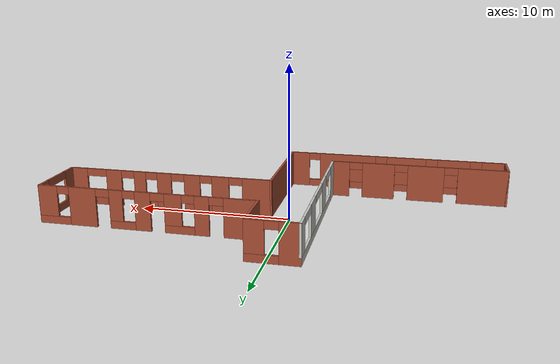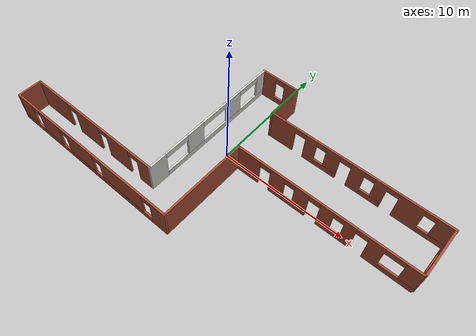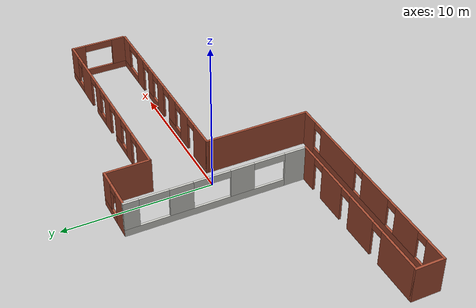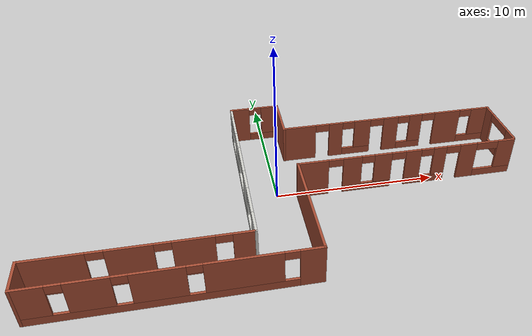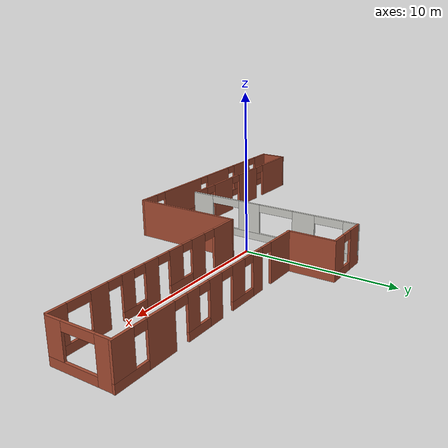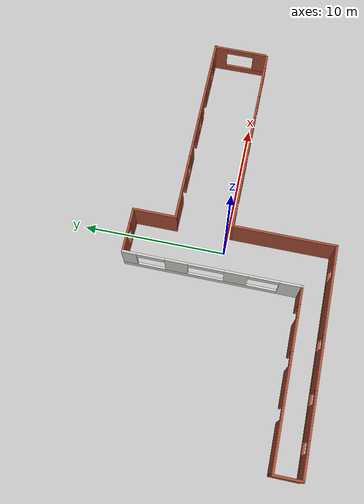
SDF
<?xml version='1.0'?>
<sdf version='1.6'>
  <model name='zoulang1.0'>
    <pose frame=''>0.692493 -0.373973 0 0 -0 0</pose>
    <link name='Wall_13'>
      <collision name='Wall_13_Collision'>
        <geometry>
          <box>
            <size>7.25 0.15 2.5</size>
          </box>
        </geometry>
        <pose frame=''>0 0 1.25 0 -0 0</pose>
      </collision>
      <visual name='Wall_13_Visual'>
        <pose frame=''>0 0 1.25 0 -0 0</pose>
        <geometry>
          <box>
            <size>7.25 0.15 2.5</size>
          </box>
        </geometry>
        <material>
          <script>
            <uri>file://media/materials/scripts/gazebo.material</uri>
            <name>Gazebo/Bricks</name>
          </script>
          <ambient>1 1 1 1</ambient>
        </material>
      </visual>
      <pose frame=''>0.563435 -3.425 0 0 0 -1.5708</pose>
    </link>
    <link name='Wall_14'>
      <pose frame=''>-6.98657 -6.975 0 0 -0 3.14159</pose>
      <visual name='Wall_14_Visual_0'>
        <pose frame=''>-6.94822 0 1.25 0 -0 0</pose>
        <geometry>
          <box>
            <size>1.35357 0.15 2.5</size>
          </box>
        </geometry>
        <material>
          <script>
            <uri>file://media/materials/scripts/gazebo.material</uri>
            <name>Gazebo/Bricks</name>
          </script>
          <ambient>0.996078 0.47451 0.0196078 1</ambient>
        </material>
      </visual>
      <collision name='Wall_14_Collision_0'>
        <geometry>
          <box>
            <size>1.35357 0.15 2.5</size>
          </box>
        </geometry>
        <pose frame=''>-6.94822 0 1.25 0 -0 0</pose>
      </collision>
      <visual name='Wall_14_Visual_1'>
        <pose frame=''>0.676784 0 0.25 0 -0 0</pose>
        <geometry>
          <box>
            <size>13.8964 0.15 0.5</size>
          </box>
        </geometry>
        <material>
          <script>
            <uri>file://media/materials/scripts/gazebo.material</uri>
            <name>Gazebo/Bricks</name>
          </script>
          <ambient>0.996078 0.47451 0.0196078 1</ambient>
        </material>
      </visual>
      <collision name='Wall_14_Collision_1'>
        <geometry>
          <box>
            <size>13.8964 0.15 0.5</size>
          </box>
        </geometry>
        <pose frame=''>0.676784 0 0.25 0 -0 0</pose>
      </collision>
      <visual name='Wall_14_Visual_2'>
        <pose frame=''>-3.4441 0 1.5 0 -0 0</pose>
        <geometry>
          <box>
            <size>4.05467 0.15 2</size>
          </box>
        </geometry>
        <material>
          <script>
            <uri>file://media/materials/scripts/gazebo.material</uri>
            <name>Gazebo/Bricks</name>
          </script>
          <ambient>0.996078 0.47451 0.0196078 1</ambient>
        </material>
      </visual>
      <collision name='Wall_14_Collision_2'>
        <geometry>
          <box>
            <size>4.05467 0.15 2</size>
          </box>
        </geometry>
        <pose frame=''>-3.4441 0 1.5 0 -0 0</pose>
      </collision>
      <visual name='Wall_14_Visual_3'>
        <pose frame=''>0.763283 0 1.5 0 -0 0</pose>
        <geometry>
          <box>
            <size>2.76009 0.15 2</size>
          </box>
        </geometry>
        <material>
          <script>
            <uri>file://media/materials/scripts/gazebo.material</uri>
            <name>Gazebo/Bricks</name>
          </script>
          <ambient>0.996078 0.47451 0.0196078 1</ambient>
        </material>
      </visual>
      <collision name='Wall_14_Collision_3'>
        <geometry>
          <box>
            <size>2.76009 0.15 2</size>
          </box>
        </geometry>
        <pose frame=''>0.763283 0 1.5 0 -0 0</pose>
      </collision>
      <visual name='Wall_14_Visual_4'>
        <pose frame=''>4.06041 0 1.5 0 -0 0</pose>
        <geometry>
          <box>
            <size>2.23417 0.15 2</size>
          </box>
        </geometry>
        <material>
          <script>
            <uri>file://media/materials/scripts/gazebo.material</uri>
            <name>Gazebo/Bricks</name>
          </script>
          <ambient>0.996078 0.47451 0.0196078 1</ambient>
        </material>
      </visual>
      <collision name='Wall_14_Collision_4'>
        <geometry>
          <box>
            <size>2.23417 0.15 2</size>
          </box>
        </geometry>
        <pose frame=''>4.06041 0 1.5 0 -0 0</pose>
      </collision>
      <visual name='Wall_14_Visual_5'>
        <pose frame=''>6.80125 0 1.5 0 -0 0</pose>
        <geometry>
          <box>
            <size>1.6475 0.15 2</size>
          </box>
        </geometry>
        <material>
          <script>
            <uri>file://media/materials/scripts/gazebo.material</uri>
            <name>Gazebo/Bricks</name>
          </script>
          <ambient>0.996078 0.47451 0.0196078 1</ambient>
        </material>
      </visual>
      <collision name='Wall_14_Collision_5'>
        <geometry>
          <box>
            <size>1.6475 0.15 2</size>
          </box>
        </geometry>
        <pose frame=''>6.80125 0 1.5 0 -0 0</pose>
      </collision>
      <visual name='Wall_14_Visual_6'>
        <pose frame=''>-5.87143 0 2.25 0 -0 0</pose>
        <geometry>
          <box>
            <size>0.8 0.15 0.5</size>
          </box>
        </geometry>
        <material>
          <script>
            <uri>file://media/materials/scripts/gazebo.material</uri>
            <name>Gazebo/Bricks</name>
          </script>
          <ambient>0.996078 0.47451 0.0196078 1</ambient>
        </material>
      </visual>
      <collision name='Wall_14_Collision_6'>
        <geometry>
          <box>
            <size>0.8 0.15 0.5</size>
          </box>
        </geometry>
        <pose frame=''>-5.87143 0 2.25 0 -0 0</pose>
      </collision>
      <visual name='Wall_14_Visual_7'>
        <pose frame=''>-1.01676 0 2.25 0 -0 0</pose>
        <geometry>
          <box>
            <size>0.8 0.15 0.5</size>
          </box>
        </geometry>
        <material>
          <script>
            <uri>file://media/materials/scripts/gazebo.material</uri>
            <name>Gazebo/Bricks</name>
          </script>
          <ambient>0.996078 0.47451 0.0196078 1</ambient>
        </material>
      </visual>
      <collision name='Wall_14_Collision_7'>
        <geometry>
          <box>
            <size>0.8 0.15 0.5</size>
          </box>
        </geometry>
        <pose frame=''>-1.01676 0 2.25 0 -0 0</pose>
      </collision>
      <visual name='Wall_14_Visual_8'>
        <pose frame=''>2.54333 0 2.25 0 -0 0</pose>
        <geometry>
          <box>
            <size>0.8 0.15 0.5</size>
          </box>
        </geometry>
        <material>
          <script>
            <uri>file://media/materials/scripts/gazebo.material</uri>
            <name>Gazebo/Bricks</name>
          </script>
          <ambient>0.996078 0.47451 0.0196078 1</ambient>
        </material>
      </visual>
      <collision name='Wall_14_Collision_8'>
        <geometry>
          <box>
            <size>0.8 0.15 0.5</size>
          </box>
        </geometry>
        <pose frame=''>2.54333 0 2.25 0 -0 0</pose>
      </collision>
      <visual name='Wall_14_Visual_9'>
        <pose frame=''>5.5775 0 2.25 0 -0 0</pose>
        <geometry>
          <box>
            <size>0.8 0.15 0.5</size>
          </box>
        </geometry>
        <material>
          <script>
            <uri>file://media/materials/scripts/gazebo.material</uri>
            <name>Gazebo/Bricks</name>
          </script>
          <ambient>0.996078 0.47451 0.0196078 1</ambient>
        </material>
      </visual>
      <collision name='Wall_14_Collision_9'>
        <geometry>
          <box>
            <size>0.8 0.15 0.5</size>
          </box>
        </geometry>
        <pose frame=''>5.5775 0 2.25 0 -0 0</pose>
      </collision>
    </link>
    <link name='Wall_15'>
      <collision name='Wall_15_Collision'>
        <geometry>
          <box>
            <size>2 0.15 2.5</size>
          </box>
        </geometry>
        <pose frame=''>0 0 1.25 0 -0 0</pose>
      </collision>
      <visual name='Wall_15_Visual'>
        <pose frame=''>0 0 1.25 0 -0 0</pose>
        <geometry>
          <box>
            <size>2 0.15 2.5</size>
          </box>
        </geometry>
        <material>
          <script>
            <uri>file://media/materials/scripts/gazebo.material</uri>
            <name>Gazebo/Bricks</name>
          </script>
          <ambient>1 1 1 1</ambient>
        </material>
      </visual>
      <pose frame=''>-14.5366 -6.05 0 0 -0 1.5708</pose>
    </link>
    <link name='Wall_16'>
      <pose frame=''>-8.61157 -5.125 0 0 -0 0</pose>
      <visual name='Wall_16_Visual_0'>
        <pose frame=''>-4.33145 0 1.25 0 -0 0</pose>
        <geometry>
          <box>
            <size>3.33709 0.15 2.5</size>
          </box>
        </geometry>
        <material>
          <script>
            <uri>file://media/materials/scripts/gazebo.material</uri>
            <name>Gazebo/Bricks</name>
          </script>
          <ambient>1 1 1 1</ambient>
        </material>
      </visual>
      <collision name='Wall_16_Collision_0'>
        <geometry>
          <box>
            <size>3.33709 0.15 2.5</size>
          </box>
        </geometry>
        <pose frame=''>-4.33145 0 1.25 0 -0 0</pose>
      </collision>
      <visual name='Wall_16_Visual_1'>
        <pose frame=''>-0.534 0 1.25 0 -0 0</pose>
        <geometry>
          <box>
            <size>2.45781 0.15 2.5</size>
          </box>
        </geometry>
        <material>
          <script>
            <uri>file://media/materials/scripts/gazebo.material</uri>
            <name>Gazebo/Bricks</name>
          </script>
          <ambient>1 1 1 1</ambient>
        </material>
      </visual>
      <collision name='Wall_16_Collision_1'>
        <geometry>
          <box>
            <size>2.45781 0.15 2.5</size>
          </box>
        </geometry>
        <pose frame=''>-0.534 0 1.25 0 -0 0</pose>
      </collision>
      <visual name='Wall_16_Visual_2'>
        <pose frame=''>2.70245 0 1.25 0 -0 0</pose>
        <geometry>
          <box>
            <size>2.21508 0.15 2.5</size>
          </box>
        </geometry>
        <material>
          <script>
            <uri>file://media/materials/scripts/gazebo.material</uri>
            <name>Gazebo/Bricks</name>
          </script>
          <ambient>1 1 1 1</ambient>
        </material>
      </visual>
      <collision name='Wall_16_Collision_2'>
        <geometry>
          <box>
            <size>2.21508 0.15 2.5</size>
          </box>
        </geometry>
        <pose frame=''>2.70245 0 1.25 0 -0 0</pose>
      </collision>
      <visual name='Wall_16_Visual_3'>
        <pose frame=''>5.35499 0 1.25 0 -0 0</pose>
        <geometry>
          <box>
            <size>1.29001 0.15 2.5</size>
          </box>
        </geometry>
        <material>
          <script>
            <uri>file://media/materials/scripts/gazebo.material</uri>
            <name>Gazebo/Bricks</name>
          </script>
          <ambient>1 1 1 1</ambient>
        </material>
      </visual>
      <collision name='Wall_16_Collision_3'>
        <geometry>
          <box>
            <size>1.29001 0.15 2.5</size>
          </box>
        </geometry>
        <pose frame=''>5.35499 0 1.25 0 -0 0</pose>
      </collision>
      <visual name='Wall_16_Visual_4'>
        <pose frame=''>-2.21291 0 2.25 0 -0 0</pose>
        <geometry>
          <box>
            <size>0.9 0.15 0.5</size>
          </box>
        </geometry>
        <material>
          <script>
            <uri>file://media/materials/scripts/gazebo.material</uri>
            <name>Gazebo/Bricks</name>
          </script>
          <ambient>1 1 1 1</ambient>
        </material>
      </visual>
      <collision name='Wall_16_Collision_4'>
        <geometry>
          <box>
            <size>0.9 0.15 0.5</size>
          </box>
        </geometry>
        <pose frame=''>-2.21291 0 2.25 0 -0 0</pose>
      </collision>
      <visual name='Wall_16_Visual_5'>
        <pose frame=''>1.14491 0 2.25 0 -0 0</pose>
        <geometry>
          <box>
            <size>0.9 0.15 0.5</size>
          </box>
        </geometry>
        <material>
          <script>
            <uri>file://media/materials/scripts/gazebo.material</uri>
            <name>Gazebo/Bricks</name>
          </script>
          <ambient>1 1 1 1</ambient>
        </material>
      </visual>
      <collision name='Wall_16_Collision_5'>
        <geometry>
          <box>
            <size>0.9 0.15 0.5</size>
          </box>
        </geometry>
        <pose frame=''>1.14491 0 2.25 0 -0 0</pose>
      </collision>
      <visual name='Wall_16_Visual_6'>
        <pose frame=''>4.25999 0 2.25 0 -0 0</pose>
        <geometry>
          <box>
            <size>0.9 0.15 0.5</size>
          </box>
        </geometry>
        <material>
          <script>
            <uri>file://media/materials/scripts/gazebo.material</uri>
            <name>Gazebo/Bricks</name>
          </script>
          <ambient>1 1 1 1</ambient>
        </material>
      </visual>
      <collision name='Wall_16_Collision_6'>
        <geometry>
          <box>
            <size>0.9 0.15 0.5</size>
          </box>
        </geometry>
        <pose frame=''>4.25999 0 2.25 0 -0 0</pose>
      </collision>
    </link>
    <link name='Wall_17'>
      <pose frame=''>-2.68656 0.925 0 0 -0 1.5708</pose>
      <visual name='Wall_17_Visual_0'>
        <pose frame=''>-5.33907 0 1.25 0 -0 0</pose>
        <geometry>
          <box>
            <size>1.57187 0.15 2.5</size>
          </box>
        </geometry>
        <material>
          <script>
            <uri>file://media/materials/scripts/gazebo.material</uri>
            <name>Gazebo/CeilingTiled</name>
          </script>
          <ambient>1 1 1 1</ambient>
        </material>
      </visual>
      <collision name='Wall_17_Collision_0'>
        <geometry>
          <box>
            <size>1.57187 0.15 2.5</size>
          </box>
        </geometry>
        <pose frame=''>-5.33907 0 1.25 0 -0 0</pose>
      </collision>
      <visual name='Wall_17_Visual_1'>
        <pose frame=''>0.785934 0 0.25 0 -0 0</pose>
        <geometry>
          <box>
            <size>10.6781 0.15 0.5</size>
          </box>
        </geometry>
        <material>
          <script>
            <uri>file://media/materials/scripts/gazebo.material</uri>
            <name>Gazebo/CeilingTiled</name>
          </script>
          <ambient>1 1 1 1</ambient>
        </material>
      </visual>
      <collision name='Wall_17_Collision_1'>
        <geometry>
          <box>
            <size>10.6781 0.15 0.5</size>
          </box>
        </geometry>
        <pose frame=''>0.785934 0 0.25 0 -0 0</pose>
      </collision>
      <visual name='Wall_17_Visual_2'>
        <pose frame=''>-1.65476 0 1.5 0 -0 0</pose>
        <geometry>
          <box>
            <size>1.60674 0.15 2</size>
          </box>
        </geometry>
        <material>
          <script>
            <uri>file://media/materials/scripts/gazebo.material</uri>
            <name>Gazebo/CeilingTiled</name>
          </script>
          <ambient>1 1 1 1</ambient>
        </material>
      </visual>
      <collision name='Wall_17_Collision_2'>
        <geometry>
          <box>
            <size>1.60674 0.15 2</size>
          </box>
        </geometry>
        <pose frame=''>-1.65476 0 1.5 0 -0 0</pose>
      </collision>
      <visual name='Wall_17_Visual_3'>
        <pose frame=''>2.39079 0 1.5 0 -0 0</pose>
        <geometry>
          <box>
            <size>1.56637 0.15 2</size>
          </box>
        </geometry>
        <material>
          <script>
            <uri>file://media/materials/scripts/gazebo.material</uri>
            <name>Gazebo/CeilingTiled</name>
          </script>
          <ambient>1 1 1 1</ambient>
        </material>
      </visual>
      <collision name='Wall_17_Collision_3'>
        <geometry>
          <box>
            <size>1.56637 0.15 2</size>
          </box>
        </geometry>
        <pose frame=''>2.39079 0 1.5 0 -0 0</pose>
      </collision>
      <visual name='Wall_17_Visual_4'>
        <pose frame=''>5.61599 0 1.5 0 -0 0</pose>
        <geometry>
          <box>
            <size>1.01803 0.15 2</size>
          </box>
        </geometry>
        <material>
          <script>
            <uri>file://media/materials/scripts/gazebo.material</uri>
            <name>Gazebo/CeilingTiled</name>
          </script>
          <ambient>1 1 1 1</ambient>
        </material>
      </visual>
      <collision name='Wall_17_Collision_4'>
        <geometry>
          <box>
            <size>1.01803 0.15 2</size>
          </box>
        </geometry>
        <pose frame=''>5.61599 0 1.5 0 -0 0</pose>
      </collision>
      <visual name='Wall_17_Visual_5'>
        <pose frame=''>-3.50563 0 2.25 0 -0 0</pose>
        <geometry>
          <box>
            <size>2.095 0.15 0.5</size>
          </box>
        </geometry>
        <material>
          <script>
            <uri>file://media/materials/scripts/gazebo.material</uri>
            <name>Gazebo/CeilingTiled</name>
          </script>
          <ambient>1 1 1 1</ambient>
        </material>
      </visual>
      <collision name='Wall_17_Collision_5'>
        <geometry>
          <box>
            <size>2.095 0.15 0.5</size>
          </box>
        </geometry>
        <pose frame=''>-3.50563 0 2.25 0 -0 0</pose>
      </collision>
      <visual name='Wall_17_Visual_6'>
        <pose frame=''>0.378104 0 2.25 0 -0 0</pose>
        <geometry>
          <box>
            <size>2.459 0.15 0.5</size>
          </box>
        </geometry>
        <material>
          <script>
            <uri>file://media/materials/scripts/gazebo.material</uri>
            <name>Gazebo/CeilingTiled</name>
          </script>
          <ambient>1 1 1 1</ambient>
        </material>
      </visual>
      <collision name='Wall_17_Collision_6'>
        <geometry>
          <box>
            <size>2.459 0.15 0.5</size>
          </box>
        </geometry>
        <pose frame=''>0.378104 0 2.25 0 -0 0</pose>
      </collision>
      <visual name='Wall_17_Visual_7'>
        <pose frame=''>4.14047 0 2.25 0 -0 0</pose>
        <geometry>
          <box>
            <size>1.933 0.15 0.5</size>
          </box>
        </geometry>
        <material>
          <script>
            <uri>file://media/materials/scripts/gazebo.material</uri>
            <name>Gazebo/CeilingTiled</name>
          </script>
          <ambient>1 1 1 1</ambient>
        </material>
      </visual>
      <collision name='Wall_17_Collision_7'>
        <geometry>
          <box>
            <size>1.933 0.15 0.5</size>
          </box>
        </geometry>
        <pose frame=''>4.14047 0 2.25 0 -0 0</pose>
      </collision>
    </link>
    <link name='Wall_18'>
      <pose frame=''>-1.13657 6.975 0 0 -0 0</pose>
      <visual name='Wall_18_Visual_0'>
        <pose frame=''>-0.990487 0 1.25 0 -0 0</pose>
        <geometry>
          <box>
            <size>1.26903 0.15 2.5</size>
          </box>
        </geometry>
        <material>
          <script>
            <uri>file://media/materials/scripts/gazebo.material</uri>
            <name>Gazebo/Bricks</name>
          </script>
          <ambient>1 1 1 1</ambient>
        </material>
      </visual>
      <collision name='Wall_18_Collision_0'>
        <geometry>
          <box>
            <size>1.26903 0.15 2.5</size>
          </box>
        </geometry>
        <pose frame=''>-0.990487 0 1.25 0 -0 0</pose>
      </collision>
      <visual name='Wall_18_Visual_1'>
        <pose frame=''>0.634513 0 0.25 0 -0 0</pose>
        <geometry>
          <box>
            <size>1.98097 0.15 0.5</size>
          </box>
        </geometry>
        <material>
          <script>
            <uri>file://media/materials/scripts/gazebo.material</uri>
            <name>Gazebo/Bricks</name>
          </script>
          <ambient>1 1 1 1</ambient>
        </material>
      </visual>
      <collision name='Wall_18_Collision_1'>
        <geometry>
          <box>
            <size>1.98097 0.15 0.5</size>
          </box>
        </geometry>
        <pose frame=''>0.634513 0 0.25 0 -0 0</pose>
      </collision>
      <visual name='Wall_18_Visual_2'>
        <pose frame=''>1.03451 0 1.5 0 -0 0</pose>
        <geometry>
          <box>
            <size>1.18097 0.15 2</size>
          </box>
        </geometry>
        <material>
          <script>
            <uri>file://media/materials/scripts/gazebo.material</uri>
            <name>Gazebo/Bricks</name>
          </script>
          <ambient>1 1 1 1</ambient>
        </material>
      </visual>
      <collision name='Wall_18_Collision_2'>
        <geometry>
          <box>
            <size>1.18097 0.15 2</size>
          </box>
        </geometry>
        <pose frame=''>1.03451 0 1.5 0 -0 0</pose>
      </collision>
      <visual name='Wall_18_Visual_3'>
        <pose frame=''>0.044026 0 2.25 0 -0 0</pose>
        <geometry>
          <box>
            <size>0.8 0.15 0.5</size>
          </box>
        </geometry>
        <material>
          <script>
            <uri>file://media/materials/scripts/gazebo.material</uri>
            <name>Gazebo/Bricks</name>
          </script>
          <ambient>1 1 1 1</ambient>
        </material>
      </visual>
      <collision name='Wall_18_Collision_3'>
        <geometry>
          <box>
            <size>0.8 0.15 0.5</size>
          </box>
        </geometry>
        <pose frame=''>0.044026 0 2.25 0 -0 0</pose>
      </collision>
    </link>
    <link name='Wall_19'>
      <collision name='Wall_19_Collision'>
        <geometry>
          <box>
            <size>3.11565 0.15 2.5</size>
          </box>
        </geometry>
        <pose frame=''>0 0 1.25 0 -0 0</pose>
      </collision>
      <visual name='Wall_19_Visual'>
        <pose frame=''>0 0 1.25 0 -0 0</pose>
        <geometry>
          <box>
            <size>3.11565 0.15 2.5</size>
          </box>
        </geometry>
        <material>
          <script>
            <uri>file://media/materials/scripts/gazebo.material</uri>
            <name>Gazebo/Bricks</name>
          </script>
          <ambient>1 1 1 1</ambient>
        </material>
      </visual>
      <pose frame=''>0.413435 5.49217 0 0 0 -1.5708</pose>
    </link>
    <link name='Wall_20'>
      <pose frame=''>7.48657 4.03248 0 0 -0 0</pose>
      <visual name='Wall_20_Visual_0'>
        <pose frame=''>-6.04901 0 1.25 0 -0 0</pose>
        <geometry>
          <box>
            <size>2.15197 0.15 2.5</size>
          </box>
        </geometry>
        <material>
          <script>
            <uri>file://media/materials/scripts/gazebo.material</uri>
            <name>Gazebo/Bricks</name>
          </script>
          <ambient>1 1 1 1</ambient>
        </material>
      </visual>
      <collision name='Wall_20_Collision_0'>
        <geometry>
          <box>
            <size>2.15197 0.15 2.5</size>
          </box>
        </geometry>
        <pose frame=''>-6.04901 0 1.25 0 -0 0</pose>
      </collision>
      <visual name='Wall_20_Visual_1'>
        <pose frame=''>-3.61407 0 1.25 0 -0 0</pose>
        <geometry>
          <box>
            <size>0.917909 0.15 2.5</size>
          </box>
        </geometry>
        <material>
          <script>
            <uri>file://media/materials/scripts/gazebo.material</uri>
            <name>Gazebo/Bricks</name>
          </script>
          <ambient>1 1 1 1</ambient>
        </material>
      </visual>
      <collision name='Wall_20_Collision_1'>
        <geometry>
          <box>
            <size>0.917909 0.15 2.5</size>
          </box>
        </geometry>
        <pose frame=''>-3.61407 0 1.25 0 -0 0</pose>
      </collision>
      <visual name='Wall_20_Visual_2'>
        <pose frame=''>0.154363 0 1.25 0 -0 0</pose>
        <geometry>
          <box>
            <size>1.01096 0.15 2.5</size>
          </box>
        </geometry>
        <material>
          <script>
            <uri>file://media/materials/scripts/gazebo.material</uri>
            <name>Gazebo/Bricks</name>
          </script>
          <ambient>1 1 1 1</ambient>
        </material>
      </visual>
      <collision name='Wall_20_Collision_2'>
        <geometry>
          <box>
            <size>1.01096 0.15 2.5</size>
          </box>
        </geometry>
        <pose frame=''>0.154363 0 1.25 0 -0 0</pose>
      </collision>
      <visual name='Wall_20_Visual_3'>
        <pose frame=''>4.13216 0 1.25 0 -0 0</pose>
        <geometry>
          <box>
            <size>1.80186 0.15 2.5</size>
          </box>
        </geometry>
        <material>
          <script>
            <uri>file://media/materials/scripts/gazebo.material</uri>
            <name>Gazebo/Bricks</name>
          </script>
          <ambient>1 1 1 1</ambient>
        </material>
      </visual>
      <collision name='Wall_20_Collision_3'>
        <geometry>
          <box>
            <size>1.80186 0.15 2.5</size>
          </box>
        </geometry>
        <pose frame=''>4.13216 0 1.25 0 -0 0</pose>
      </collision>
      <visual name='Wall_20_Visual_4'>
        <pose frame=''>-2.20312 0 0.25 0 -0 0</pose>
        <geometry>
          <box>
            <size>1.904 0.15 0.5</size>
          </box>
        </geometry>
        <material>
          <script>
            <uri>file://media/materials/scripts/gazebo.material</uri>
            <name>Gazebo/Bricks</name>
          </script>
          <ambient>1 1 1 1</ambient>
        </material>
      </visual>
      <collision name='Wall_20_Collision_4'>
        <geometry>
          <box>
            <size>1.904 0.15 0.5</size>
          </box>
        </geometry>
        <pose frame=''>-2.20312 0 0.25 0 -0 0</pose>
      </collision>
      <visual name='Wall_20_Visual_5'>
        <pose frame=''>1.49553 0 0.25 0 -0 0</pose>
        <geometry>
          <box>
            <size>1.67138 0.15 0.5</size>
          </box>
        </geometry>
        <material>
          <script>
            <uri>file://media/materials/scripts/gazebo.material</uri>
            <name>Gazebo/Bricks</name>
          </script>
          <ambient>1 1 1 1</ambient>
        </material>
      </visual>
      <collision name='Wall_20_Collision_5'>
        <geometry>
          <box>
            <size>1.67138 0.15 0.5</size>
          </box>
        </geometry>
        <pose frame=''>1.49553 0 0.25 0 -0 0</pose>
      </collision>
      <visual name='Wall_20_Visual_6'>
        <pose frame=''>6.07904 0 0.25 0 -0 0</pose>
        <geometry>
          <box>
            <size>2.09191 0.15 0.5</size>
          </box>
        </geometry>
        <material>
          <script>
            <uri>file://media/materials/scripts/gazebo.material</uri>
            <name>Gazebo/Bricks</name>
          </script>
          <ambient>1 1 1 1</ambient>
        </material>
      </visual>
      <collision name='Wall_20_Collision_6'>
        <geometry>
          <box>
            <size>2.09191 0.15 0.5</size>
          </box>
        </geometry>
        <pose frame=''>6.07904 0 0.25 0 -0 0</pose>
      </collision>
      <visual name='Wall_20_Visual_7'>
        <pose frame=''>-1.80312 0 1.5 0 -0 0</pose>
        <geometry>
          <box>
            <size>1.104 0.15 2</size>
          </box>
        </geometry>
        <material>
          <script>
            <uri>file://media/materials/scripts/gazebo.material</uri>
            <name>Gazebo/Bricks</name>
          </script>
          <ambient>1 1 1 1</ambient>
        </material>
      </visual>
      <collision name='Wall_20_Collision_7'>
        <geometry>
          <box>
            <size>1.104 0.15 2</size>
          </box>
        </geometry>
        <pose frame=''>-1.80312 0 1.5 0 -0 0</pose>
      </collision>
      <visual name='Wall_20_Visual_8'>
        <pose frame=''>-1.80312 0 1.5 0 -0 0</pose>
        <geometry>
          <box>
            <size>1.104 0.15 2</size>
          </box>
        </geometry>
        <material>
          <script>
            <uri>file://media/materials/scripts/gazebo.material</uri>
            <name>Gazebo/Bricks</name>
          </script>
          <ambient>1 1 1 1</ambient>
        </material>
      </visual>
      <collision name='Wall_20_Collision_8'>
        <geometry>
          <box>
            <size>1.104 0.15 2</size>
          </box>
        </geometry>
        <pose frame=''>-1.80312 0 1.5 0 -0 0</pose>
      </collision>
      <visual name='Wall_20_Visual_9'>
        <pose frame=''>1.89553 0 1.5 0 -0 0</pose>
        <geometry>
          <box>
            <size>0.871385 0.15 2</size>
          </box>
        </geometry>
        <material>
          <script>
            <uri>file://media/materials/scripts/gazebo.material</uri>
            <name>Gazebo/Bricks</name>
          </script>
          <ambient>1 1 1 1</ambient>
        </material>
      </visual>
      <collision name='Wall_20_Collision_9'>
        <geometry>
          <box>
            <size>0.871385 0.15 2</size>
          </box>
        </geometry>
        <pose frame=''>1.89553 0 1.5 0 -0 0</pose>
      </collision>
      <visual name='Wall_20_Visual_10'>
        <pose frame=''>1.89553 0 1.5 0 -0 0</pose>
        <geometry>
          <box>
            <size>0.871385 0.15 2</size>
          </box>
        </geometry>
        <material>
          <script>
            <uri>file://media/materials/scripts/gazebo.material</uri>
            <name>Gazebo/Bricks</name>
          </script>
          <ambient>1 1 1 1</ambient>
        </material>
      </visual>
      <collision name='Wall_20_Collision_10'>
        <geometry>
          <box>
            <size>0.871385 0.15 2</size>
          </box>
        </geometry>
        <pose frame=''>1.89553 0 1.5 0 -0 0</pose>
      </collision>
      <visual name='Wall_20_Visual_11'>
        <pose frame=''>6.47905 0 1.5 0 -0 0</pose>
        <geometry>
          <box>
            <size>1.29191 0.15 2</size>
          </box>
        </geometry>
        <material>
          <script>
            <uri>file://media/materials/scripts/gazebo.material</uri>
            <name>Gazebo/Bricks</name>
          </script>
          <ambient>1 1 1 1</ambient>
        </material>
      </visual>
      <collision name='Wall_20_Collision_11'>
        <geometry>
          <box>
            <size>1.29191 0.15 2</size>
          </box>
        </geometry>
        <pose frame=''>6.47905 0 1.5 0 -0 0</pose>
      </collision>
      <visual name='Wall_20_Visual_12'>
        <pose frame=''>-4.52303 0 2.25 0 -0 0</pose>
        <geometry>
          <box>
            <size>0.9 0.15 0.5</size>
          </box>
        </geometry>
        <material>
          <script>
            <uri>file://media/materials/scripts/gazebo.material</uri>
            <name>Gazebo/Bricks</name>
          </script>
          <ambient>1 1 1 1</ambient>
        </material>
      </visual>
      <collision name='Wall_20_Collision_12'>
        <geometry>
          <box>
            <size>0.9 0.15 0.5</size>
          </box>
        </geometry>
        <pose frame=''>-4.52303 0 2.25 0 -0 0</pose>
      </collision>
      <visual name='Wall_20_Visual_13'>
        <pose frame=''>-2.75512 0 2.25 0 -0 0</pose>
        <geometry>
          <box>
            <size>0.8 0.15 0.5</size>
          </box>
        </geometry>
        <material>
          <script>
            <uri>file://media/materials/scripts/gazebo.material</uri>
            <name>Gazebo/Bricks</name>
          </script>
          <ambient>1 1 1 1</ambient>
        </material>
      </visual>
      <collision name='Wall_20_Collision_13'>
        <geometry>
          <box>
            <size>0.8 0.15 0.5</size>
          </box>
        </geometry>
        <pose frame=''>-2.75512 0 2.25 0 -0 0</pose>
      </collision>
      <visual name='Wall_20_Visual_14'>
        <pose frame=''>1.05984 0 2.25 0 -0 0</pose>
        <geometry>
          <box>
            <size>0.8 0.15 0.5</size>
          </box>
        </geometry>
        <material>
          <script>
            <uri>file://media/materials/scripts/gazebo.material</uri>
            <name>Gazebo/Bricks</name>
          </script>
          <ambient>1 1 1 1</ambient>
        </material>
      </visual>
      <collision name='Wall_20_Collision_14'>
        <geometry>
          <box>
            <size>0.8 0.15 0.5</size>
          </box>
        </geometry>
        <pose frame=''>1.05984 0 2.25 0 -0 0</pose>
      </collision>
      <visual name='Wall_20_Visual_15'>
        <pose frame=''>5.43309 0 2.25 0 -0 0</pose>
        <geometry>
          <box>
            <size>0.8 0.15 0.5</size>
          </box>
        </geometry>
        <material>
          <script>
            <uri>file://media/materials/scripts/gazebo.material</uri>
            <name>Gazebo/Bricks</name>
          </script>
          <ambient>1 1 1 1</ambient>
        </material>
      </visual>
      <collision name='Wall_20_Collision_15'>
        <geometry>
          <box>
            <size>0.8 0.15 0.5</size>
          </box>
        </geometry>
        <pose frame=''>5.43309 0 2.25 0 -0 0</pose>
      </collision>
      <visual name='Wall_20_Visual_16'>
        <pose frame=''>-0.801116 0 2.25 0 -0 0</pose>
        <geometry>
          <box>
            <size>0.9 0.15 0.5</size>
          </box>
        </geometry>
        <material>
          <script>
            <uri>file://media/materials/scripts/gazebo.material</uri>
            <name>Gazebo/Bricks</name>
          </script>
          <ambient>1 1 1 1</ambient>
        </material>
      </visual>
      <collision name='Wall_20_Collision_16'>
        <geometry>
          <box>
            <size>0.9 0.15 0.5</size>
          </box>
        </geometry>
        <pose frame=''>-0.801116 0 2.25 0 -0 0</pose>
      </collision>
      <visual name='Wall_20_Visual_17'>
        <pose frame=''>-0.801116 0 2.25 0 -0 0</pose>
        <geometry>
          <box>
            <size>0.9 0.15 0.5</size>
          </box>
        </geometry>
        <material>
          <script>
            <uri>file://media/materials/scripts/gazebo.material</uri>
            <name>Gazebo/Bricks</name>
          </script>
          <ambient>1 1 1 1</ambient>
        </material>
      </visual>
      <collision name='Wall_20_Collision_17'>
        <geometry>
          <box>
            <size>0.9 0.15 0.5</size>
          </box>
        </geometry>
        <pose frame=''>-0.801116 0 2.25 0 -0 0</pose>
      </collision>
      <visual name='Wall_20_Visual_18'>
        <pose frame=''>2.78123 0 2.25 0 -0 0</pose>
        <geometry>
          <box>
            <size>0.9 0.15 0.5</size>
          </box>
        </geometry>
        <material>
          <script>
            <uri>file://media/materials/scripts/gazebo.material</uri>
            <name>Gazebo/Bricks</name>
          </script>
          <ambient>1 1 1 1</ambient>
        </material>
      </visual>
      <collision name='Wall_20_Collision_18'>
        <geometry>
          <box>
            <size>0.9 0.15 0.5</size>
          </box>
        </geometry>
        <pose frame=''>2.78123 0 2.25 0 -0 0</pose>
      </collision>
      <visual name='Wall_20_Visual_19'>
        <pose frame=''>2.78123 0 2.25 0 -0 0</pose>
        <geometry>
          <box>
            <size>0.9 0.15 0.5</size>
          </box>
        </geometry>
        <material>
          <script>
            <uri>file://media/materials/scripts/gazebo.material</uri>
            <name>Gazebo/Bricks</name>
          </script>
          <ambient>1 1 1 1</ambient>
        </material>
      </visual>
      <collision name='Wall_20_Collision_19'>
        <geometry>
          <box>
            <size>0.9 0.15 0.5</size>
          </box>
        </geometry>
        <pose frame=''>2.78123 0 2.25 0 -0 0</pose>
      </collision>
    </link>
    <link name='Wall_21'>
      <pose frame=''>14.5134 2.13217 0 0 0 -1.5708</pose>
      <visual name='Wall_21_Visual_0'>
        <pose frame=''>-1.4783 0 1.25 0 -0 0</pose>
        <geometry>
          <box>
            <size>0.947755 0.15 2.5</size>
          </box>
        </geometry>
        <material>
          <script>
            <uri>file://media/materials/scripts/gazebo.material</uri>
            <name>Gazebo/Bricks</name>
          </script>
          <ambient>1 1 1 1</ambient>
        </material>
      </visual>
      <collision name='Wall_21_Collision_0'>
        <geometry>
          <box>
            <size>0.947755 0.15 2.5</size>
          </box>
        </geometry>
        <pose frame=''>-1.4783 0 1.25 0 -0 0</pose>
      </collision>
      <visual name='Wall_21_Visual_1'>
        <pose frame=''>0.473877 0 0.25 0 -0 0</pose>
        <geometry>
          <box>
            <size>2.95659 0.15 0.5</size>
          </box>
        </geometry>
        <material>
          <script>
            <uri>file://media/materials/scripts/gazebo.material</uri>
            <name>Gazebo/Bricks</name>
          </script>
          <ambient>1 1 1 1</ambient>
        </material>
      </visual>
      <collision name='Wall_21_Collision_1'>
        <geometry>
          <box>
            <size>2.95659 0.15 0.5</size>
          </box>
        </geometry>
        <pose frame=''>0.473877 0 0.25 0 -0 0</pose>
      </collision>
      <visual name='Wall_21_Visual_2'>
        <pose frame=''>1.46371 0 1.5 0 -0 0</pose>
        <geometry>
          <box>
            <size>0.976931 0.15 2</size>
          </box>
        </geometry>
        <material>
          <script>
            <uri>file://media/materials/scripts/gazebo.material</uri>
            <name>Gazebo/Bricks</name>
          </script>
          <ambient>1 1 1 1</ambient>
        </material>
      </visual>
      <collision name='Wall_21_Collision_2'>
        <geometry>
          <box>
            <size>0.976931 0.15 2</size>
          </box>
        </geometry>
        <pose frame=''>1.46371 0 1.5 0 -0 0</pose>
      </collision>
      <visual name='Wall_21_Visual_3'>
        <pose frame=''>-0.014588 0 2.25 0 -0 0</pose>
        <geometry>
          <box>
            <size>1.97966 0.15 0.5</size>
          </box>
        </geometry>
        <material>
          <script>
            <uri>file://media/materials/scripts/gazebo.material</uri>
            <name>Gazebo/Bricks</name>
          </script>
          <ambient>1 1 1 1</ambient>
        </material>
      </visual>
      <collision name='Wall_21_Collision_3'>
        <geometry>
          <box>
            <size>1.97966 0.15 0.5</size>
          </box>
        </geometry>
        <pose frame=''>-0.014588 0 2.25 0 -0 0</pose>
      </collision>
    </link>
    <link name='Wall_25'>
      <pose frame=''>7.48843 0.125 0 0 -0 0</pose>
      <visual name='Wall_25_Visual_0'>
        <pose frame=''>-6.01578 0 1.25 0 -0 0</pose>
        <geometry>
          <box>
            <size>1.96844 0.15 2.5</size>
          </box>
        </geometry>
        <material>
          <script>
            <uri>file://media/materials/scripts/gazebo.material</uri>
            <name>Gazebo/Bricks</name>
          </script>
          <ambient>1 1 1 1</ambient>
        </material>
      </visual>
      <collision name='Wall_25_Collision_0'>
        <geometry>
          <box>
            <size>1.96844 0.15 2.5</size>
          </box>
        </geometry>
        <pose frame=''>-6.01578 0 1.25 0 -0 0</pose>
      </collision>
      <visual name='Wall_25_Visual_1'>
        <pose frame=''>-3.54428 0 1.25 0 -0 0</pose>
        <geometry>
          <box>
            <size>1.17455 0.15 2.5</size>
          </box>
        </geometry>
        <material>
          <script>
            <uri>file://media/materials/scripts/gazebo.material</uri>
            <name>Gazebo/Bricks</name>
          </script>
          <ambient>1 1 1 1</ambient>
        </material>
      </visual>
      <collision name='Wall_25_Collision_1'>
        <geometry>
          <box>
            <size>1.17455 0.15 2.5</size>
          </box>
        </geometry>
        <pose frame=''>-3.54428 0 1.25 0 -0 0</pose>
      </collision>
      <visual name='Wall_25_Visual_2'>
        <pose frame=''>0.346867 0 1.25 0 -0 0</pose>
        <geometry>
          <box>
            <size>0.999917 0.15 2.5</size>
          </box>
        </geometry>
        <material>
          <script>
            <uri>file://media/materials/scripts/gazebo.material</uri>
            <name>Gazebo/Bricks</name>
          </script>
          <ambient>1 1 1 1</ambient>
        </material>
      </visual>
      <collision name='Wall_25_Collision_2'>
        <geometry>
          <box>
            <size>0.999917 0.15 2.5</size>
          </box>
        </geometry>
        <pose frame=''>0.346867 0 1.25 0 -0 0</pose>
      </collision>
      <visual name='Wall_25_Visual_3'>
        <pose frame=''>3.94052 0 1.25 0 -0 0</pose>
        <geometry>
          <box>
            <size>1.10926 0.15 2.5</size>
          </box>
        </geometry>
        <material>
          <script>
            <uri>file://media/materials/scripts/gazebo.material</uri>
            <name>Gazebo/Bricks</name>
          </script>
          <ambient>1 1 1 1</ambient>
        </material>
      </visual>
      <collision name='Wall_25_Collision_3'>
        <geometry>
          <box>
            <size>1.10926 0.15 2.5</size>
          </box>
        </geometry>
        <pose frame=''>3.94052 0 1.25 0 -0 0</pose>
      </collision>
      <visual name='Wall_25_Visual_4'>
        <pose frame=''>-2.00505 0 0.25 0 -0 0</pose>
        <geometry>
          <box>
            <size>1.90391 0.15 0.5</size>
          </box>
        </geometry>
        <material>
          <script>
            <uri>file://media/materials/scripts/gazebo.material</uri>
            <name>Gazebo/Bricks</name>
          </script>
          <ambient>1 1 1 1</ambient>
        </material>
      </visual>
      <collision name='Wall_25_Collision_4'>
        <geometry>
          <box>
            <size>1.90391 0.15 0.5</size>
          </box>
        </geometry>
        <pose frame=''>-2.00505 0 0.25 0 -0 0</pose>
      </collision>
      <visual name='Wall_25_Visual_5'>
        <pose frame=''>1.66636 0 0.25 0 -0 0</pose>
        <geometry>
          <box>
            <size>1.63907 0.15 0.5</size>
          </box>
        </geometry>
        <material>
          <script>
            <uri>file://media/materials/scripts/gazebo.material</uri>
            <name>Gazebo/Bricks</name>
          </script>
          <ambient>1 1 1 1</ambient>
        </material>
      </visual>
      <collision name='Wall_25_Collision_5'>
        <geometry>
          <box>
            <size>1.63907 0.15 0.5</size>
          </box>
        </geometry>
        <pose frame=''>1.66636 0 0.25 0 -0 0</pose>
      </collision>
      <visual name='Wall_25_Visual_6'>
        <pose frame=''>5.74758 0 0.25 0 -0 0</pose>
        <geometry>
          <box>
            <size>2.50484 0.15 0.5</size>
          </box>
        </geometry>
        <material>
          <script>
            <uri>file://media/materials/scripts/gazebo.material</uri>
            <name>Gazebo/Bricks</name>
          </script>
          <ambient>1 1 1 1</ambient>
        </material>
      </visual>
      <collision name='Wall_25_Collision_6'>
        <geometry>
          <box>
            <size>2.50484 0.15 0.5</size>
          </box>
        </geometry>
        <pose frame=''>5.74758 0 0.25 0 -0 0</pose>
      </collision>
      <visual name='Wall_25_Visual_7'>
        <pose frame=''>-1.60505 0 1.5 0 -0 0</pose>
        <geometry>
          <box>
            <size>1.10391 0.15 2</size>
          </box>
        </geometry>
        <material>
          <script>
            <uri>file://media/materials/scripts/gazebo.material</uri>
            <name>Gazebo/Bricks</name>
          </script>
          <ambient>1 1 1 1</ambient>
        </material>
      </visual>
      <collision name='Wall_25_Collision_7'>
        <geometry>
          <box>
            <size>1.10391 0.15 2</size>
          </box>
        </geometry>
        <pose frame=''>-1.60505 0 1.5 0 -0 0</pose>
      </collision>
      <visual name='Wall_25_Visual_8'>
        <pose frame=''>-1.60505 0 1.5 0 -0 0</pose>
        <geometry>
          <box>
            <size>1.10391 0.15 2</size>
          </box>
        </geometry>
        <material>
          <script>
            <uri>file://media/materials/scripts/gazebo.material</uri>
            <name>Gazebo/Bricks</name>
          </script>
          <ambient>1 1 1 1</ambient>
        </material>
      </visual>
      <collision name='Wall_25_Collision_8'>
        <geometry>
          <box>
            <size>1.10391 0.15 2</size>
          </box>
        </geometry>
        <pose frame=''>-1.60505 0 1.5 0 -0 0</pose>
      </collision>
      <visual name='Wall_25_Visual_9'>
        <pose frame=''>2.06636 0 1.5 0 -0 0</pose>
        <geometry>
          <box>
            <size>0.839066 0.15 2</size>
          </box>
        </geometry>
        <material>
          <script>
            <uri>file://media/materials/scripts/gazebo.material</uri>
            <name>Gazebo/Bricks</name>
          </script>
          <ambient>1 1 1 1</ambient>
        </material>
      </visual>
      <collision name='Wall_25_Collision_9'>
        <geometry>
          <box>
            <size>0.839066 0.15 2</size>
          </box>
        </geometry>
        <pose frame=''>2.06636 0 1.5 0 -0 0</pose>
      </collision>
      <visual name='Wall_25_Visual_10'>
        <pose frame=''>2.06636 0 1.5 0 -0 0</pose>
        <geometry>
          <box>
            <size>0.839066 0.15 2</size>
          </box>
        </geometry>
        <material>
          <script>
            <uri>file://media/materials/scripts/gazebo.material</uri>
            <name>Gazebo/Bricks</name>
          </script>
          <ambient>1 1 1 1</ambient>
        </material>
      </visual>
      <collision name='Wall_25_Collision_10'>
        <geometry>
          <box>
            <size>0.839066 0.15 2</size>
          </box>
        </geometry>
        <pose frame=''>2.06636 0 1.5 0 -0 0</pose>
      </collision>
      <visual name='Wall_25_Visual_11'>
        <pose frame=''>6.44008 0 1.5 0 -0 0</pose>
        <geometry>
          <box>
            <size>1.11984 0.15 2</size>
          </box>
        </geometry>
        <material>
          <script>
            <uri>file://media/materials/scripts/gazebo.material</uri>
            <name>Gazebo/Bricks</name>
          </script>
          <ambient>1 1 1 1</ambient>
        </material>
      </visual>
      <collision name='Wall_25_Collision_11'>
        <geometry>
          <box>
            <size>1.11984 0.15 2</size>
          </box>
        </geometry>
        <pose frame=''>6.44008 0 1.5 0 -0 0</pose>
      </collision>
      <visual name='Wall_25_Visual_12'>
        <pose frame=''>-4.58156 0 2.25 0 -0 0</pose>
        <geometry>
          <box>
            <size>0.9 0.15 0.5</size>
          </box>
        </geometry>
        <material>
          <script>
            <uri>file://media/materials/scripts/gazebo.material</uri>
            <name>Gazebo/Bricks</name>
          </script>
          <ambient>1 1 1 1</ambient>
        </material>
      </visual>
      <collision name='Wall_25_Collision_12'>
        <geometry>
          <box>
            <size>0.9 0.15 0.5</size>
          </box>
        </geometry>
        <pose frame=''>-4.58156 0 2.25 0 -0 0</pose>
      </collision>
      <visual name='Wall_25_Visual_13'>
        <pose frame=''>-2.557 0 2.25 0 -0 0</pose>
        <geometry>
          <box>
            <size>0.8 0.15 0.5</size>
          </box>
        </geometry>
        <material>
          <script>
            <uri>file://media/materials/scripts/gazebo.material</uri>
            <name>Gazebo/Bricks</name>
          </script>
          <ambient>1 1 1 1</ambient>
        </material>
      </visual>
      <collision name='Wall_25_Collision_13'>
        <geometry>
          <box>
            <size>0.8 0.15 0.5</size>
          </box>
        </geometry>
        <pose frame=''>-2.557 0 2.25 0 -0 0</pose>
      </collision>
      <visual name='Wall_25_Visual_14'>
        <pose frame=''>1.24683 0 2.25 0 -0 0</pose>
        <geometry>
          <box>
            <size>0.8 0.15 0.5</size>
          </box>
        </geometry>
        <material>
          <script>
            <uri>file://media/materials/scripts/gazebo.material</uri>
            <name>Gazebo/Bricks</name>
          </script>
          <ambient>1 1 1 1</ambient>
        </material>
      </visual>
      <collision name='Wall_25_Collision_14'>
        <geometry>
          <box>
            <size>0.8 0.15 0.5</size>
          </box>
        </geometry>
        <pose frame=''>1.24683 0 2.25 0 -0 0</pose>
      </collision>
      <visual name='Wall_25_Visual_15'>
        <pose frame=''>5.18766 0 2.25 0 -0 0</pose>
        <geometry>
          <box>
            <size>1.385 0.15 0.5</size>
          </box>
        </geometry>
        <material>
          <script>
            <uri>file://media/materials/scripts/gazebo.material</uri>
            <name>Gazebo/Bricks</name>
          </script>
          <ambient>1 1 1 1</ambient>
        </material>
      </visual>
      <collision name='Wall_25_Collision_15'>
        <geometry>
          <box>
            <size>1.385 0.15 0.5</size>
          </box>
        </geometry>
        <pose frame=''>5.18766 0 2.25 0 -0 0</pose>
      </collision>
      <visual name='Wall_25_Visual_16'>
        <pose frame=''>-0.603091 0 2.25 0 -0 0</pose>
        <geometry>
          <box>
            <size>0.9 0.15 0.5</size>
          </box>
        </geometry>
        <material>
          <script>
            <uri>file://media/materials/scripts/gazebo.material</uri>
            <name>Gazebo/Bricks</name>
          </script>
          <ambient>1 1 1 1</ambient>
        </material>
      </visual>
      <collision name='Wall_25_Collision_16'>
        <geometry>
          <box>
            <size>0.9 0.15 0.5</size>
          </box>
        </geometry>
        <pose frame=''>-0.603091 0 2.25 0 -0 0</pose>
      </collision>
      <visual name='Wall_25_Visual_17'>
        <pose frame=''>-0.603091 0 2.25 0 -0 0</pose>
        <geometry>
          <box>
            <size>0.9 0.15 0.5</size>
          </box>
        </geometry>
        <material>
          <script>
            <uri>file://media/materials/scripts/gazebo.material</uri>
            <name>Gazebo/Bricks</name>
          </script>
          <ambient>1 1 1 1</ambient>
        </material>
      </visual>
      <collision name='Wall_25_Collision_17'>
        <geometry>
          <box>
            <size>0.9 0.15 0.5</size>
          </box>
        </geometry>
        <pose frame=''>-0.603091 0 2.25 0 -0 0</pose>
      </collision>
      <visual name='Wall_25_Visual_18'>
        <pose frame=''>2.93589 0 2.25 0 -0 0</pose>
        <geometry>
          <box>
            <size>0.9 0.15 0.5</size>
          </box>
        </geometry>
        <material>
          <script>
            <uri>file://media/materials/scripts/gazebo.material</uri>
            <name>Gazebo/Bricks</name>
          </script>
          <ambient>1 1 1 1</ambient>
        </material>
      </visual>
      <collision name='Wall_25_Collision_18'>
        <geometry>
          <box>
            <size>0.9 0.15 0.5</size>
          </box>
        </geometry>
        <pose frame=''>2.93589 0 2.25 0 -0 0</pose>
      </collision>
      <visual name='Wall_25_Visual_19'>
        <pose frame=''>2.93589 0 2.25 0 -0 0</pose>
        <geometry>
          <box>
            <size>0.9 0.15 0.5</size>
          </box>
        </geometry>
        <material>
          <script>
            <uri>file://media/materials/scripts/gazebo.material</uri>
            <name>Gazebo/Bricks</name>
          </script>
          <ambient>1 1 1 1</ambient>
        </material>
      </visual>
      <collision name='Wall_25_Collision_19'>
        <geometry>
          <box>
            <size>0.9 0.15 0.5</size>
          </box>
        </geometry>
        <pose frame=''>2.93589 0 2.25 0 -0 0</pose>
      </collision>
    </link>
    <static>1</static>
  </model>
</sdf>
